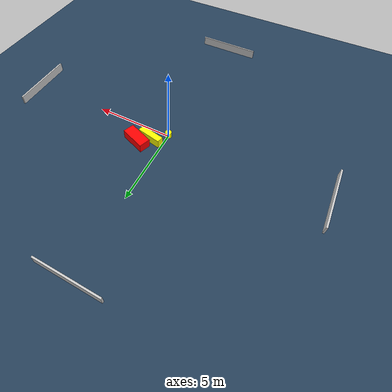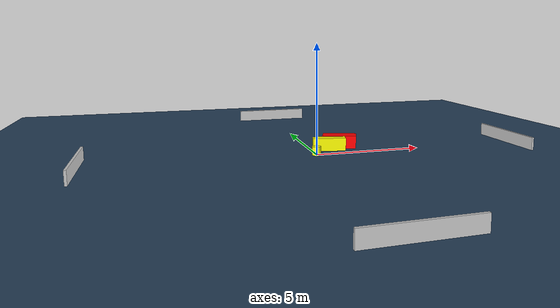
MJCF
<?xml version="1.0" ?>
<mujoco model="generated_environment">
  <option timestep="0.01" integrator="RK4" cone="elliptic"/>
  <default>
    <geom density="1"/>
  </default>
  <asset>
    <texture builtin="gradient" height="3072" name="skybox" rgb1="0.3 0.5 0.7" rgb2="0 0 0" type="skybox" width="512"/>
    <texture builtin="checker" height="300" name="groundplane" rgb1="0.2 0.3 0.4" rgb2="0.1 0.2 0.3" type="2d" width="300"/>
    <material name="groundplane" reflectance="0.2" texrepeat="5 5" texture="groundplane"/>
  </asset>
  <worldbody>
    <light dir="0 0 -1" directional="true" pos="0 0 1.5"/>
    <geom condim="3" friction="0.5 0.005 0.001" material="groundplane" name="floor" pos="0 0 0" size="0 0 0.05" type="plane"/>
    <body name="walls">
      <geom name="wall_1" condim="4" pos="-10.0 0.0 0.3" rgba="0.800000011920929 0.800000011920929 0.800000011920929 1.0" size="0.05 2.0 0.3" type="box"/>
      <geom name="wall_2" condim="4" pos="10.0 0.0 0.3" rgba="0.800000011920929 0.800000011920929 0.800000011920929 1.0" size="0.05 2.0 0.3" type="box"/>
      <geom name="wall_3" condim="4" pos="0.0 -10.0 0.3" rgba="0.800000011920929 0.800000011920929 0.800000011920929 1.0" size="2.0 0.05 0.3" type="box"/>
      <geom name="wall_4" condim="4" pos="0.0 10.0 0.3" rgba="0.800000011920929 0.800000011920929 0.800000011920929 1.0" size="2.0 0.05 0.3" type="box"/>
    </body>
    <body name="robot">
      <joint name="joint_x" type="slide" pos="0 0 0" axis="1 0 0"/>
      <joint name="joint_y" type="slide" pos="0 0 0" axis="0 1 0"/>
      <geom name="robot" type="cylinder" pos="0.0 0.0 0.2" size="0.2 0.2 0.0" mass="5.0" friction="1.0 0.005 0.0001" condim="4" rgba="1.0 1.0 0.0 1.0"/>
    </body>
    <body name="obstacle_1_movable">
      <geom name="obstacle_1_movable" condim="4" pos="0.8353149017609035 0.7568554647768444 0.3" euler="0 0 258.95458599990604" friction="0.0 0.005 0.001" rgba="1.0 1.0 0.0 1.0" size="0.20578299274821144 0.7662139947286819 0.3" type="box" mass="0.1"/>
      <joint type="free"/>
    </body>
    <body name="obstacle_2_static">
      <geom name="obstacle_2_static" condim="4" pos="1.5228461887492637 1.2764170226137206 0.3" euler="0 0 69.16467812256957" friction="0.0 0.005 0.001" rgba="1.0 0.0 0.0 1.0" size="0.3605354816843841 0.7999455478063511 0.3" type="box"/>
    </body>
  </worldbody>
  <actuator>
    <motor name="actuator_x" joint="joint_x" gear="1" ctrlrange="-1 1"/>
    <motor name="actuator_y" joint="joint_y" gear="1" ctrlrange="-1 1"/>
  </actuator>
</mujoco>
